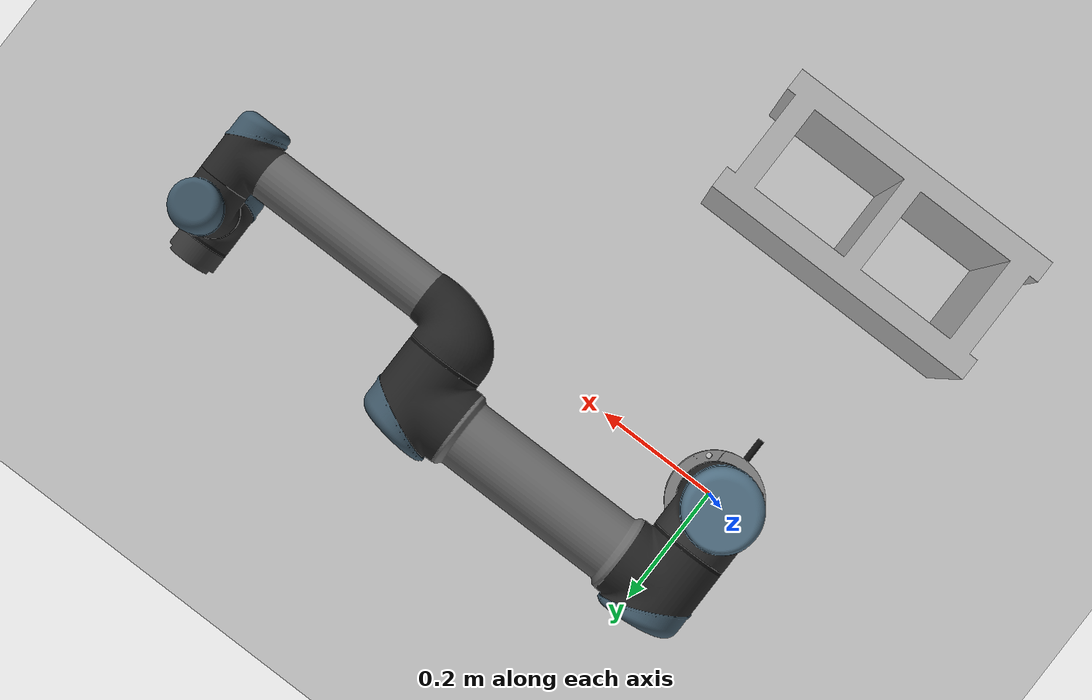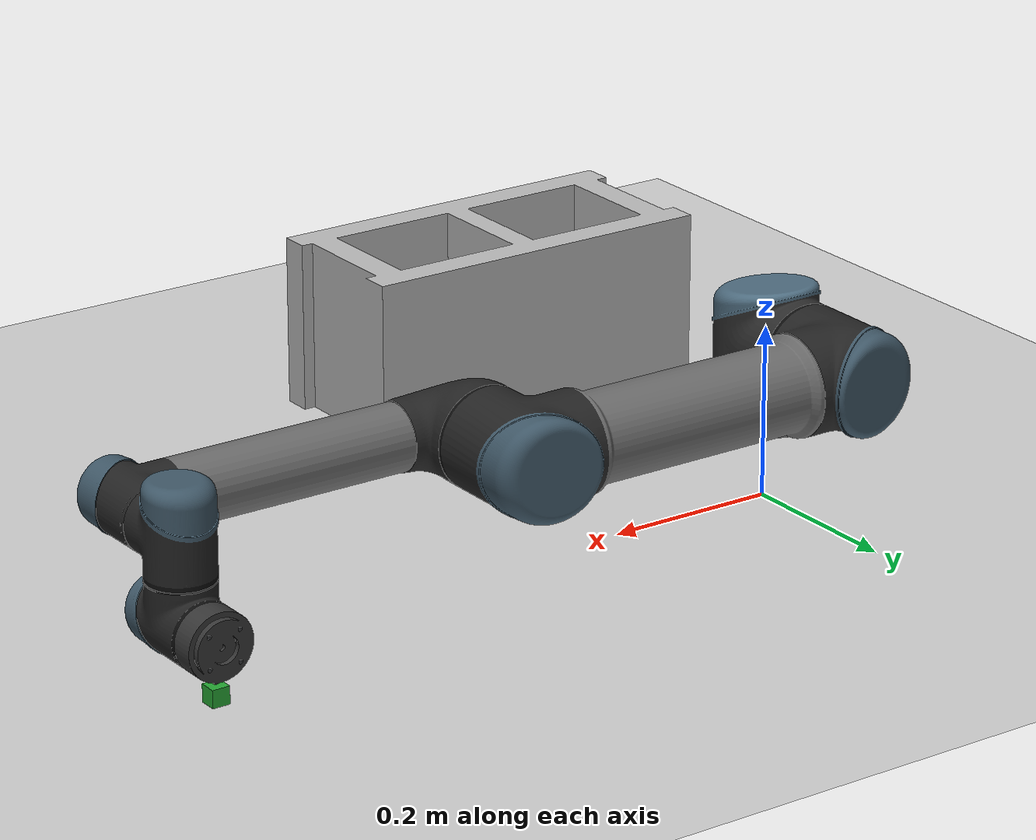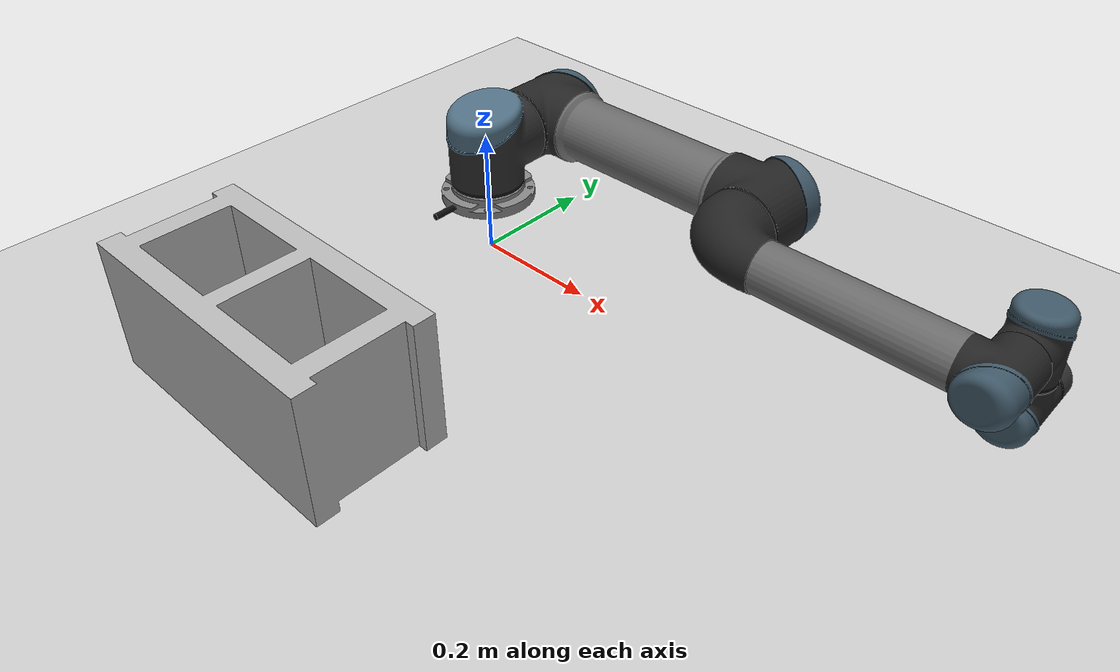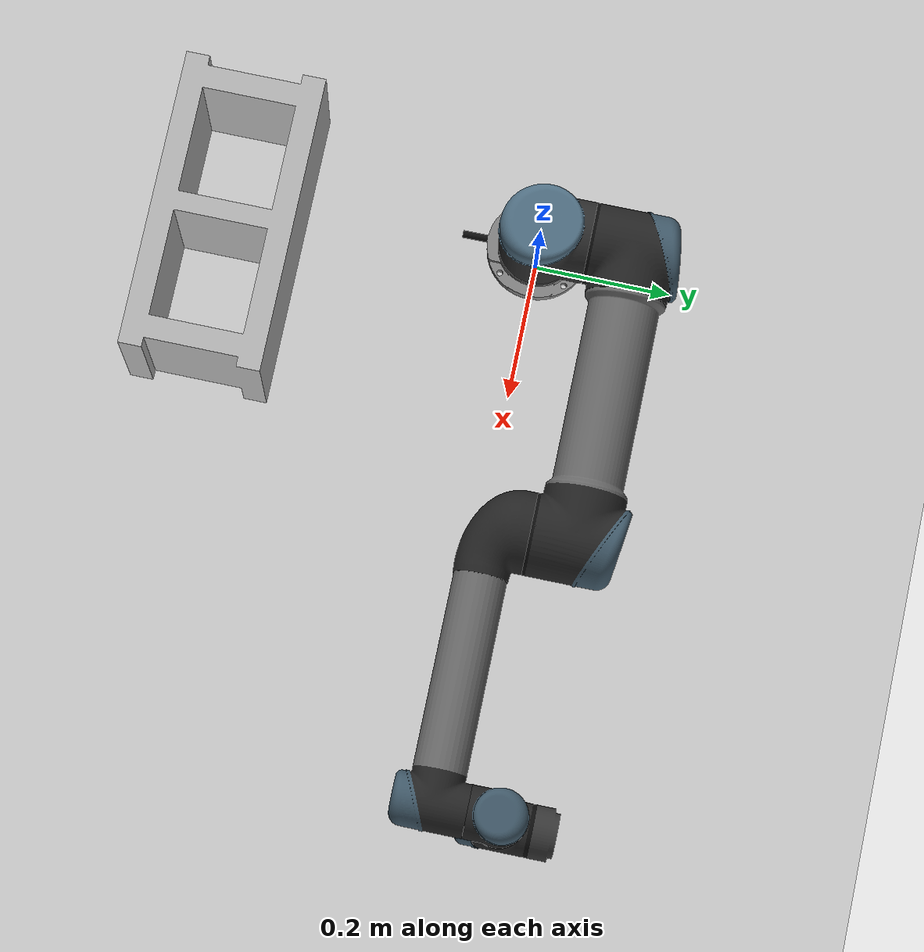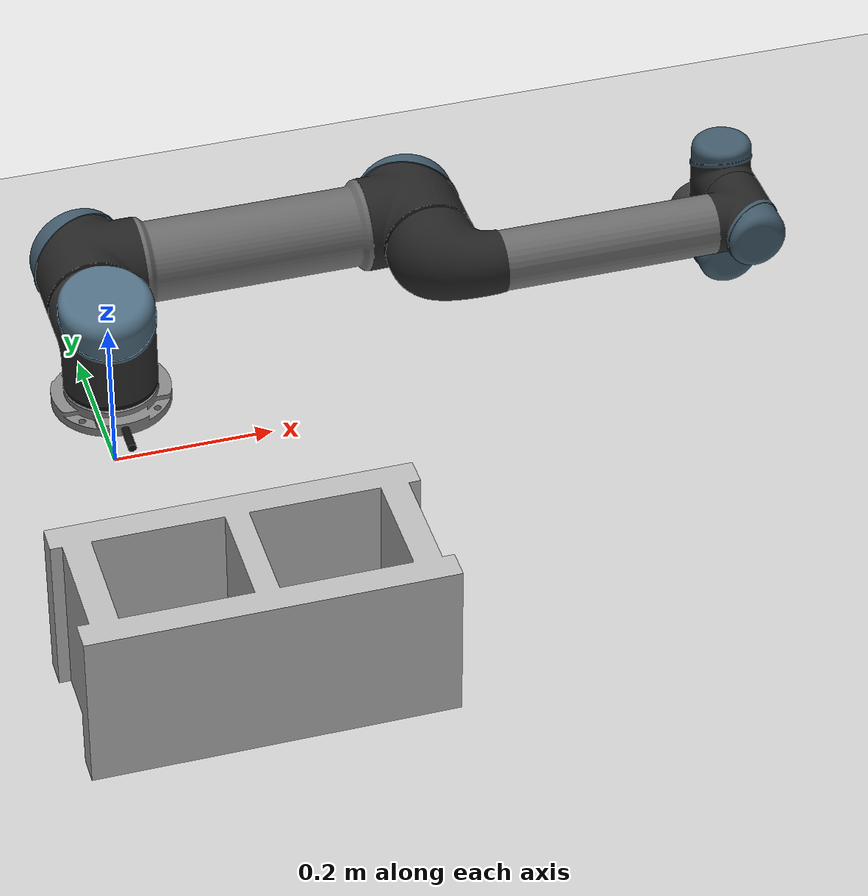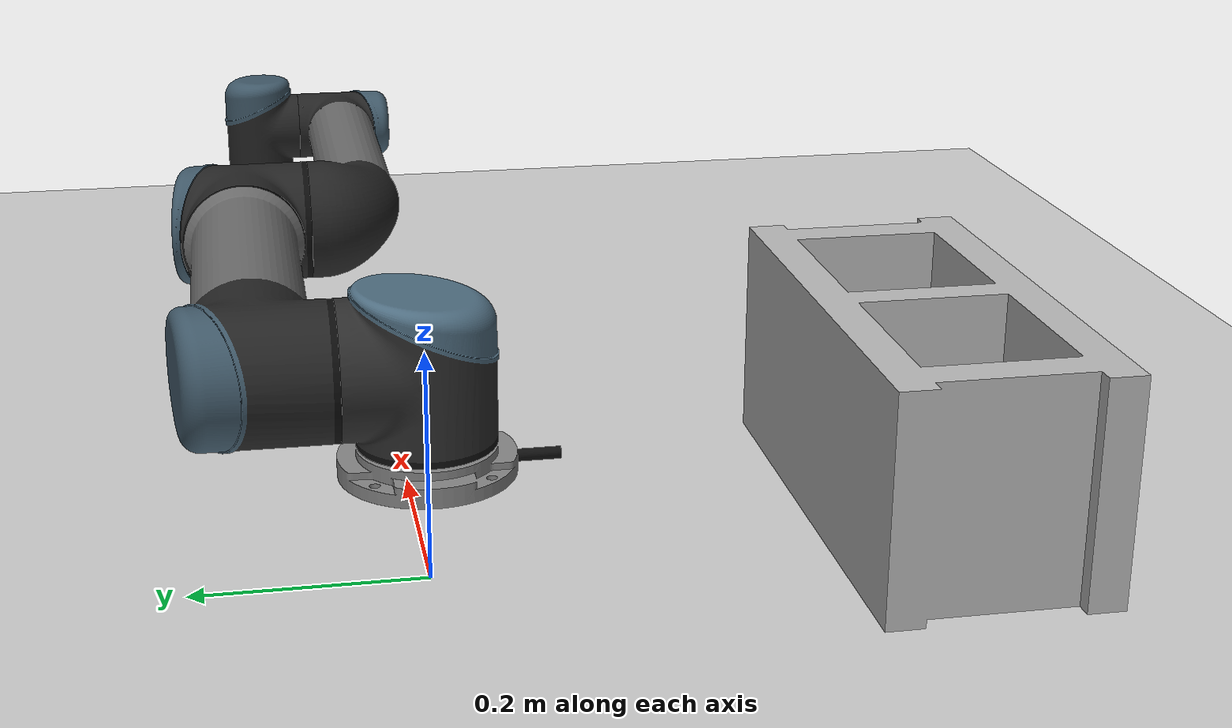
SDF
<sdf version="1.6">
 <world name="default">
  <light name="sun" type="directional">
   <pose>0 0 10 0 -0 0</pose>
   <diffuse>0.8 0.8 0.8 1</diffuse>
   <specular>0.2 0.2 0.2 1</specular>
   <attenuation>
    <range>1000</range>
    <constant>0.9</constant>
    <linear>0.01</linear>
    <quadratic>0.001</quadratic>
   </attenuation>
   <direction>-0.5 0.1 -0.9</direction>
  </light>
  <model name="ground_plane">
   <static>1</static>
   <link name="link">
    <collision name="collision">
     <geometry><plane><normal>0 0 1</normal><size>100 100</size></plane></geometry>
     <surface><friction><ode><mu>100</mu><mu2>50</mu2></ode></friction></surface>
    </collision>
    <visual name="visual">
     <cast_shadows>0</cast_shadows>
     <geometry><plane><normal>0 0 1</normal><size>100 100</size></plane></geometry>
     <material>
      <script><uri>file://media/materials/scripts/gazebo.material</uri><name>Gazebo/Grey</name></script>
     </material>
    </visual>
   </link>
  </model>
  <gravity>0 0 -9.8</gravity>
  <magnetic_field>6e-06 2.3e-05 -4.2e-05</magnetic_field>
  <atmosphere type="adiabatic"/>
  <physics name="default_physics" default="0" type="ode">
   <max_step_size>0.001</max_step_size>
   <real_time_factor>1</real_time_factor>
   <real_time_update_rate>1000</real_time_update_rate>
  </physics>
  <scene><ambient>0.4 0.4 0.4 1</ambient><background>0.7 0.7 0.7 1</background><shadows>1</shadows></scene>
  <audio><device>default</device></audio>
  <spherical_coordinates>
   <surface_model>EARTH_WGS84</surface_model>
   <latitude_deg>0</latitude_deg>
   <longitude_deg>0</longitude_deg>
   <elevation>0</elevation>
   <heading_deg>0</heading_deg>
  </spherical_coordinates>
  <model name="robot">
   <link name="base_link">
    <inertial>
     <mass>4</mass>
     <inertia>
      <ixx>0.00443333</ixx>
      <ixy>0</ixy>
      <ixz>0</ixz>
      <iyy>0.00443333</iyy>
      <iyz>0</iyz>
      <izz>0.0072</izz>
     </inertia>
    </inertial>
    <collision name="base_link_collision">
     <geometry>
      <mesh>
       <scale>1 1 1</scale>
       <uri>/home/sky/catkin_ws/src/universal_robot/ur_description/meshes/ur5/collision/base.stl</uri>
      </mesh>
     </geometry>
    </collision>
    <visual name="base_link_visual">
     <geometry>
      <mesh>
       <scale>1 1 1</scale>
       <uri>/home/sky/catkin_ws/src/universal_robot/ur_description/meshes/ur5/visual/base.dae</uri>
      </mesh>
     </geometry>
    </visual>
   </link>
   <joint name="world_joint" type="fixed"><child>base_link</child><parent>world</parent></joint>
   <link name="shoulder_link">
    <pose>0 0 0.089159 0 -0 0</pose>
    <inertial>
     <mass>3.7</mass>
     <inertia>
      <ixx>0.0102675</ixx>
      <ixy>0</ixy>
      <ixz>0</ixz>
      <iyy>0.0102675</iyy>
      <iyz>0</iyz>
      <izz>0.00666</izz>
     </inertia>
    </inertial>
    <collision name="shoulder_link_collision">
     <geometry>
      <mesh>
       <scale>1 1 1</scale>
       <uri>/home/sky/catkin_ws/src/universal_robot/ur_description/meshes/ur5/collision/shoulder.stl</uri>
      </mesh>
     </geometry>
    </collision>
    <visual name="shoulder_link_visual">
     <geometry>
      <mesh>
       <scale>1 1 1</scale>
       <uri>/home/sky/catkin_ws/src/universal_robot/ur_description/meshes/ur5/visual/shoulder.dae</uri>
      </mesh>
     </geometry>
     <material><script><uri>__default__</uri><name>__default__</name></script></material>
    </visual>
    <self_collide>1</self_collide>
   </link>
   <joint name="shoulder_pan_joint" type="revolute">
    <child>shoulder_link</child>
    <parent>base_link</parent>
    <axis>
     <xyz>0 0 1</xyz>
     <limit><lower>-6.28319</lower><upper>6.28319</upper><effort>150</effort><velocity>3.15</velocity></limit>
     <dynamics>
      <damping>0</damping>
      <friction>0</friction>
      <spring_reference>0</spring_reference>
      <spring_stiffness>0</spring_stiffness>
     </dynamics>
     <use_parent_model_frame>1</use_parent_model_frame>
    </axis>
   </joint>
   <link name="upper_arm_link">
    <pose>0 0.13585 0.089159 3.14159 1.57079 3.14159</pose>
    <inertial>
     <pose>0 0 0.28 0 -0 0</pose>
     <mass>8.393</mass>
     <inertia>
      <ixx>0.226891</ixx>
      <ixy>0</ixy>
      <ixz>0</ixz>
      <iyy>0.226891</iyy>
      <iyz>0</iyz>
      <izz>0.0151074</izz>
     </inertia>
    </inertial>
    <collision name="upper_arm_link_collision">
     <geometry>
      <mesh>
       <scale>1 1 1</scale>
       <uri>/home/sky/catkin_ws/src/universal_robot/ur_description/meshes/ur5/collision/upperarm.stl</uri>
      </mesh>
     </geometry>
    </collision>
    <visual name="upper_arm_link_visual">
     <geometry>
      <mesh>
       <scale>1 1 1</scale>
       <uri>/home/sky/catkin_ws/src/universal_robot/ur_description/meshes/ur5/visual/upperarm.dae</uri>
      </mesh>
     </geometry>
     <material><script><uri>__default__</uri><name>__default__</name></script></material>
    </visual>
    <self_collide>1</self_collide>
   </link>
   <joint name="shoulder_lift_joint" type="revolute">
    <child>upper_arm_link</child>
    <parent>shoulder_link</parent>
    <axis>
     <xyz>0 1 0</xyz>
     <limit><lower>-6.28319</lower><upper>6.28319</upper><effort>150</effort><velocity>3.15</velocity></limit>
     <dynamics>
      <damping>0</damping>
      <friction>0</friction>
      <spring_reference>0</spring_reference>
      <spring_stiffness>0</spring_stiffness>
     </dynamics>
     <use_parent_model_frame>1</use_parent_model_frame>
    </axis>
   </joint>
   <link name="forearm_link">
    <pose>0.425 0.01615 0.089159 3.14159 1.57079 3.14159</pose>
    <inertial>
     <pose>0 0 0.25 0 -0 0</pose>
     <mass>2.275</mass>
     <inertia>
      <ixx>0.0494433</ixx>
      <ixy>0</ixy>
      <ixz>0</ixz>
      <iyy>0.0494433</iyy>
      <iyz>0</iyz>
      <izz>0.004095</izz>
     </inertia>
    </inertial>
    <collision name="forearm_link_collision">
     <geometry>
      <mesh>
       <scale>1 1 1</scale>
       <uri>/home/sky/catkin_ws/src/universal_robot/ur_description/meshes/ur5/collision/forearm.stl</uri>
      </mesh>
     </geometry>
    </collision>
    <visual name="forearm_link_visual">
     <geometry>
      <mesh>
       <scale>1 1 1</scale>
       <uri>/home/sky/catkin_ws/src/universal_robot/ur_description/meshes/ur5/visual/forearm.dae</uri>
      </mesh>
     </geometry>
     <material><script><uri>__default__</uri><name>__default__</name></script></material>
    </visual>
    <self_collide>1</self_collide>
   </link>
   <joint name="elbow_joint" type="revolute">
    <child>forearm_link</child>
    <parent>upper_arm_link</parent>
    <axis>
     <xyz>0 1 0</xyz>
     <limit><lower>-3.14159</lower><upper>3.14159</upper><effort>150</effort><velocity>3.15</velocity></limit>
     <dynamics>
      <damping>0</damping>
      <friction>0</friction>
      <spring_reference>0</spring_reference>
      <spring_stiffness>0</spring_stiffness>
     </dynamics>
     <use_parent_model_frame>1</use_parent_model_frame>
    </axis>
   </joint>
   <link name="wrist_1_link">
    <pose>0.81725 0.01615 0.089159 3.14159 -0 3.14159</pose>
    <inertial>
     <mass>1.219</mass>
     <inertia>
      <ixx>0.111173</ixx>
      <ixy>0</ixy>
      <ixz>0</ixz>
      <iyy>0.111173</iyy>
      <iyz>0</iyz>
      <izz>0.21942</izz>
     </inertia>
    </inertial>
    <collision name="wrist_1_link_collision">
     <geometry>
      <mesh>
       <scale>1 1 1</scale>
       <uri>/home/sky/catkin_ws/src/universal_robot/ur_description/meshes/ur5/collision/wrist1.stl</uri>
      </mesh>
     </geometry>
    </collision>
    <visual name="wrist_1_link_visual">
     <geometry>
      <mesh>
       <scale>1 1 1</scale>
       <uri>/home/sky/catkin_ws/src/universal_robot/ur_description/meshes/ur5/visual/wrist1.dae</uri>
      </mesh>
     </geometry>
     <material><script><uri>__default__</uri><name>__default__</name></script></material>
    </visual>
    <self_collide>1</self_collide>
   </link>
   <joint name="wrist_1_joint" type="revolute">
    <child>wrist_1_link</child>
    <parent>forearm_link</parent>
    <axis>
     <xyz>0 1 0</xyz>
     <limit><lower>-6.28319</lower><upper>6.28319</upper><effort>28</effort><velocity>3.2</velocity></limit>
     <dynamics>
      <damping>0</damping>
      <friction>0</friction>
      <spring_reference>0</spring_reference>
      <spring_stiffness>0</spring_stiffness>
     </dynamics>
     <use_parent_model_frame>1</use_parent_model_frame>
    </axis>
   </joint>
   <link name="wrist_2_link">
    <pose>0.81725 0.10915 0.089159 3.14159 -0 3.14159</pose>
    <inertial>
     <mass>1.219</mass>
     <inertia>
      <ixx>0.111173</ixx>
      <ixy>0</ixy>
      <ixz>0</ixz>
      <iyy>0.111173</iyy>
      <iyz>0</iyz>
      <izz>0.21942</izz>
     </inertia>
    </inertial>
    <collision name="wrist_2_link_collision">
     <geometry>
      <mesh>
       <scale>1 1 1</scale>
       <uri>/home/sky/catkin_ws/src/universal_robot/ur_description/meshes/ur5/collision/wrist2.stl</uri>
      </mesh>
     </geometry>
    </collision>
    <visual name="wrist_2_link_visual">
     <geometry>
      <mesh>
       <scale>1 1 1</scale>
       <uri>/home/sky/catkin_ws/src/universal_robot/ur_description/meshes/ur5/visual/wrist2.dae</uri>
      </mesh>
     </geometry>
     <material><script><uri>__default__</uri><name>__default__</name></script></material>
    </visual>
    <self_collide>1</self_collide>
   </link>
   <joint name="wrist_2_joint" type="revolute">
    <child>wrist_2_link</child>
    <parent>wrist_1_link</parent>
    <axis>
     <xyz>0 0 -1</xyz>
     <limit><lower>-6.28319</lower><upper>6.28319</upper><effort>28</effort><velocity>3.2</velocity></limit>
     <dynamics>
      <damping>0</damping>
      <friction>0</friction>
      <spring_reference>0</spring_reference>
      <spring_stiffness>0</spring_stiffness>
     </dynamics>
     <use_parent_model_frame>1</use_parent_model_frame>
    </axis>
   </joint>
   <link name="wrist_3_link">
    <pose>0.81725 0.10915 -0.005491 3.14159 -0 3.14159</pose>
    <inertial>
     <pose>-0 3e-06 3e-06 0 -0 0</pose>
     <mass>0.18791</mass>
     <inertia>
      <ixx>0.0171375</ixx>
      <ixy>6.10083e-20</ixy>
      <ixz>5.38596e-20</ixz>
      <iyy>0.0171375</iyy>
      <iyz>-3.42632e-08</iyz>
      <izz>0.033823</izz>
     </inertia>
    </inertial>
    <collision name="wrist_3_link_collision">
     <geometry>
      <mesh>
       <scale>1 1 1</scale>
       <uri>/home/sky/catkin_ws/src/universal_robot/ur_description/meshes/ur5/collision/wrist3.stl</uri>
      </mesh>
     </geometry>
    </collision>
    <collision name="wrist_3_link_fixed_joint_lump__ee_link_collision_1">
     <pose>-0 0.0723 0 0 -0 1.5708</pose>
     <geometry><box><size>0.01 0.01 0.01</size></box></geometry>
    </collision>
    <collision name="wrist_3_link_fixed_joint_lump__camera_link_collision_2">
     <pose>-0 0.0623 0.055 0 -0 1.5708</pose>
     <geometry><box><size>0.02 0.02 0.02</size></box></geometry>
     <surface><friction><ode><mu>0.2</mu><mu2>0.2</mu2></ode></friction></surface>
    </collision>
    <visual name="wrist_3_link_visual">
     <geometry>
      <mesh>
       <scale>1 1 1</scale>
       <uri>/home/sky/catkin_ws/src/universal_robot/ur_description/meshes/ur5/visual/wrist3.dae</uri>
      </mesh>
     </geometry>
     <material><script><uri>__default__</uri><name>__default__</name></script></material>
    </visual>
    <visual name="wrist_3_link_fixed_joint_lump__camera_link_visual_1">
     <pose>-0 0.0623 0.055 0 -0 1.5708</pose>
     <geometry><box><size>0.02 0.02 0.02</size></box></geometry>
     <material>
      <script><name>Gazebo/Green</name><uri>file://media/materials/scripts/gazebo.material</uri></script>
     </material>
    </visual>
    <self_collide>1</self_collide>
    <sensor name="camera1" type="camera">
     <update_rate>30</update_rate>
     <camera name="head">
      <horizontal_fov>1.39626</horizontal_fov>
      <image><width>800</width><height>800</height><format>R8G8B8</format></image>
      <clip><near>0.02</near><far>300</far></clip>
      <noise><type>gaussian</type><mean>0</mean><stddev>0.007</stddev></noise>
     </camera>
     <plugin name="camera_controller" filename="libgazebo_ros_camera.so">
      <alwaysOn>1</alwaysOn>
      <updateRate>0.0</updateRate>
      <cameraName>ur5/usbcam</cameraName>
      <imageTopicName>image_raw</imageTopicName>
      <cameraInfoTopicName>camera_info</cameraInfoTopicName>
      <frameName>camera_link_optical</frameName>
      <hackBaseline>0.0</hackBaseline>
      <distortionK1>0.0</distortionK1>
      <distortionK2>0.0</distortionK2>
      <distortionK3>0.0</distortionK3>
      <distortionT1>0.0</distortionT1>
      <distortionT2>0.0</distortionT2>
      <CxPrime>0</CxPrime>
      <Cx>0.0</Cx>
      <Cy>0.0</Cy>
      <focalLength>0.0</focalLength>
      <robotNamespace>/</robotNamespace>
     </plugin>
     <pose>-0 0.0623 0.055 0 -0 1.5708</pose>
    </sensor>
   </link>
   <joint name="wrist_3_joint" type="revolute">
    <child>wrist_3_link</child>
    <parent>wrist_2_link</parent>
    <axis>
     <xyz>0 1 0</xyz>
     <limit><lower>-6.28319</lower><upper>6.28319</upper><effort>28</effort><velocity>3.2</velocity></limit>
     <dynamics>
      <damping>0</damping>
      <friction>0</friction>
      <spring_reference>0</spring_reference>
      <spring_stiffness>0</spring_stiffness>
     </dynamics>
     <use_parent_model_frame>1</use_parent_model_frame>
    </axis>
   </joint>
   <static>0</static>
   <plugin name="ros_control" filename="libgazebo_ros_control.so"><robotNamespace>/</robotNamespace></plugin>
   <pose>0 0 0.1 2.8e-05 -0.00015 0</pose>
  </model>
  <model name="cinder_block">
   <link name="link">
    <inertial>
     <pose>0 0 0.1016 0 -0 0</pose>
     <mass>5</mass>
     <inertia>
      <ixx>0.028705</ixx>
      <ixy>0</ixy>
      <iyy>0.073708</iyy>
      <ixz>0</ixz>
      <iyz>0</iyz>
      <izz>0.06908</izz>
     </inertia>
    </inertial>
    <visual name="visual">
     <geometry><mesh><uri>model://cinder_block/meshes/cinder_block.dae</uri></mesh></geometry>
    </visual>
    <collision name="left">
     <pose>0 -0.08465 0.1016 0 -0 0</pose>
     <geometry><box><size>0.43495 0.0339 0.2032</size></box></geometry>
     <surface>
      <contact><ode><max_vel>0.1</max_vel><min_depth>0.001</min_depth></ode></contact>
      <friction><ode><mu>1</mu><mu2>1</mu2></ode></friction>
     </surface>
    </collision>
    <collision name="right">
     <pose>0 0.08465 0.1016 0 -0 0</pose>
     <geometry><box><size>0.43495 0.0339 0.2032</size></box></geometry>
     <surface>
      <contact><ode><max_vel>0.1</max_vel><min_depth>0.001</min_depth></ode></contact>
      <friction><ode><mu>1</mu><mu2>1</mu2></ode></friction>
     </surface>
    </collision>
    <collision name="front">
     <pose>0.18625 0 0.1016 0 -0 0</pose>
     <geometry><box><size>0.0339 0.1354 0.203</size></box></geometry>
     <surface>
      <contact><ode><max_vel>0.1</max_vel><min_depth>0.001</min_depth></ode></contact>
      <friction><ode><mu>1</mu><mu2>1</mu2></ode></friction>
     </surface>
    </collision>
    <collision name="middle">
     <pose>0 0 0.1016 0 -0 0</pose>
     <geometry><box><size>0.0339 0.1354 0.203</size></box></geometry>
     <surface>
      <contact><ode><max_vel>0.1</max_vel><min_depth>0.001</min_depth></ode></contact>
      <friction><ode><mu>1</mu><mu2>1</mu2></ode></friction>
     </surface>
    </collision>
    <collision name="back">
     <pose>-0.18625 0 0.1016 0 -0 0</pose>
     <geometry><box><size>0.0339 0.1354 0.203</size></box></geometry>
     <surface>
      <contact><ode><max_vel>0.1</max_vel><min_depth>0.001</min_depth></ode></contact>
      <friction><ode><mu>1</mu><mu2>1</mu2></ode></friction>
     </surface>
    </collision>
   </link>
   <pose>0.06216 -0.444092 -1.1e-05 -1.4e-05 2.5e-05 -0.001381</pose>
  </model>
 </world>
</sdf>
